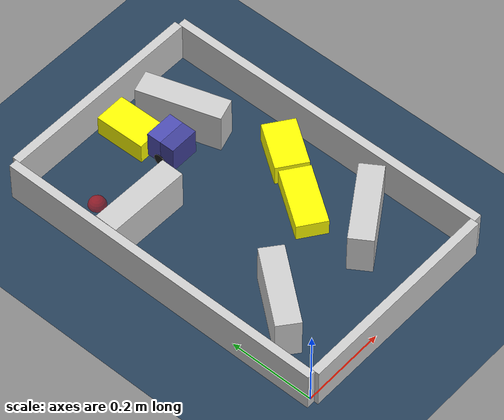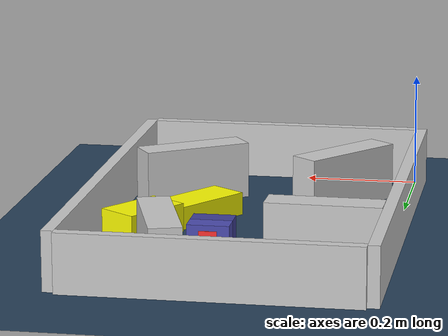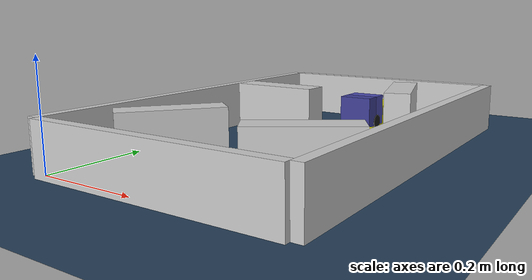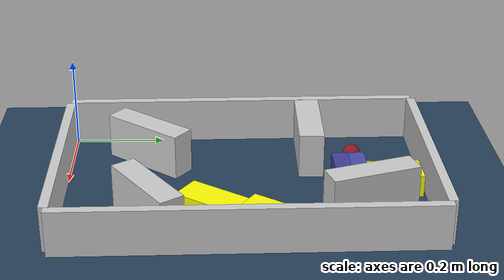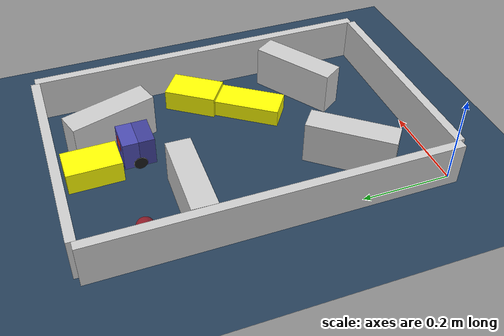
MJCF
<?xml version='1.0' encoding='utf-8'?>
<mujoco model="real_buildable">
  <compiler angle="degree" />
  <option timestep="0.002" integrator="implicitfast" iterations="100" cone="elliptic" />
  <default>
    <geom density="1" />
  </default>
  <asset>
    <texture builtin="gradient" height="3072" rgb1="0.3 0.5 0.7" rgb2="0 0 0" type="skybox" width="512" />
    <texture builtin="checker" height="300" mark="edge" markrgb="0.8 0.8 0.8" name="groundplane" rgb1="0.2 0.3 0.4" rgb2="0.1 0.2 0.3" type="2d" width="300" />
    <material name="groundplane" reflectance="0.2" texrepeat="5 5" texture="groundplane" texuniform="true" />
  </asset>
  <worldbody>
    <light dir="0 0 -1" directional="true" pos="0 0 1.5" />
    <geom name="floor" type="plane" condim="4" friction="0.5 0.005 0.001" material="groundplane" size="0 0 0.05" />
    <body name="walls">
      <geom name="wall_boundary_left" type="box" condim="4" friction="1.0 0.005 0.0001" rgba="0.8 0.8 0.8 1" pos="-0.010000 0.387500 0.050000" euler="0 0 0.000000" size="0.010000 0.397500 0.050000" />
      <geom name="wall_boundary_right" type="box" condim="4" friction="1.0 0.005 0.0001" rgba="0.8 0.8 0.8 1" pos="0.500000 0.387500 0.050000" euler="0 0 0.000000" size="0.010000 0.397500 0.050000" />
      <geom name="wall_boundary_bottom" type="box" condim="4" friction="1.0 0.005 0.0001" rgba="0.8 0.8 0.8 1" pos="0.245000 -0.010000 0.050000" euler="0 0 0.000000" size="0.245000 0.010000 0.050000" />
      <geom name="wall_boundary_top" type="box" condim="4" friction="1.0 0.005 0.0001" rgba="0.8 0.8 0.8 1" pos="0.245000 0.785000 0.050000" euler="0 0 0.000000" size="0.245000 0.010000 0.050000" />
      <geom name="wall_inner_1" type="box" condim="4" friction="1.0 0.005 0.0001" rgba="0.8 0.8 0.8 1" pos="0.112821 0.177057 0.050000" euler="0 0 51.144799" size="0.097500 0.027500 0.050000" />
      <geom name="wall_inner_2" type="box" condim="4" friction="1.0 0.005 0.0001" rgba="0.8 0.8 0.8 1" pos="0.385439 0.183719 0.050000" euler="0 0 33.390875" size="0.097500 0.027500 0.050000" />
      <geom name="wall_inner_3" type="box" condim="4" friction="1.0 0.005 0.0001" rgba="0.8 0.8 0.8 1" pos="0.098000 0.537000 0.050000" euler="0 0 179.100000" size="0.097500 0.027500 0.050000" />
      <geom name="wall_inner_4" type="box" condim="4" friction="1.0 0.005 0.0001" rgba="0.8 0.8 0.8 1" pos="0.351000 0.647000 0.050000" euler="0 0 107.500000" size="0.097500 0.027500 0.050000" />
    </body>
    <body name="car" pos="0.27304311190814817 0.60908164394990671 0.01" quat="0.70391391445838447 0 0 0.71028529551995812">
      <freejoint name="car_freejoint" />
      <inertial pos="0 0 0.0375" mass="0.35" diaginertia="0.000266 0.000266 0.000286" />
      <geom name="front_chassis_collision" type="box" pos="0.0175 0 0.0375" size="0.0175 0.035 0.0325" rgba="0.3 0.3 0.7 1" />
      <geom name="rear_chassis_collision" type="box" pos="-0.0175 0 0.0375" size="0.0175 0.035 0.0325" rgba="0.25 0.25 0.6 1" />
      <geom name="front_marker" type="box" pos="0.034 0 0.0505" size="0.002 0.015 0.01" rgba="1 0.2 0.2 1" contype="0" conaffinity="0" />
      <body name="rear_support_body" pos="-0.03 0 0.0025">
        <joint name="rear_caster_joint" type="ball" damping="0.0001" />
        <inertial pos="0 0 0" mass="0.025" diaginertia="0.000001 0.000001 0.000001" />
        <geom name="rear_support" type="sphere" pos="0 0 0" size="0.0025" friction="0 0 0" rgba="0.7 0.1 0.1 1" />
      </body>
      <body name="front_support_body" pos="0.03 0 0.0025">
        <joint name="front_caster_joint" type="ball" damping="0.0001" />
        <inertial pos="0 0 0" mass="0.025" diaginertia="0.000001 0.000001 0.000001" />
        <geom name="front_support" type="sphere" pos="0 0 0" size="0.0025" friction="0 0 0" rgba="0.1 0.7 0.1 1" />
      </body>
      <body name="left_wheel" pos="0 0.0375 0.015">
        <inertial pos="0 0 0" mass="0.05" diaginertia="0.000003 0.000006 0.000003" />
        <joint name="left_wheel_joint" type="hinge" axis="0 1 0" damping="0.01" armature="0.0001" />
        <geom name="left_wheel_collision" type="cylinder" size="0.015 0.0005" euler="90 0 0" rgba="0.1 0.1 0.1 1" />
      </body>
      <body name="right_wheel" pos="0 -0.0375 0.015">
        <inertial pos="0 0 0" mass="0.05" diaginertia="0.000003 0.000006 0.000003" />
        <joint name="right_wheel_joint" type="hinge" axis="0 1 0" damping="0.01" armature="0.0001" />
        <geom name="right_wheel_collision" type="cylinder" size="0.015 0.0005" euler="90 0 0" rgba="0.1 0.1 0.1 1" />
      </body>
    </body>
    <body name="obstacle_0_movable">
      <geom name="obstacle_0_movable" condim="4" pos="0.35076817456810988 0.31866617318598139 0.02" friction="1 0.005 0.0001" rgba="1 1 0 1" size="0.035000 0.075000 0.020000" type="box" mass="0.1" quat="0.30368392077595158 0 0 0.95277283560256143" />
      <joint type="free" />
    </body>
    <body name="obstacle_1_movable">
      <geom name="obstacle_1_movable" condim="4" pos="0.25824672711967872 0.70843367407508739 0.025000000000000001" friction="1 0.005 0.0001" rgba="1 1 0 1" size="0.037500 0.060000 0.025000" type="box" mass="0.1" quat="0.99996863122199675 0 0 0.0079206421460816644" />
      <joint type="free" />
    </body>
    <body name="obstacle_2_movable">
      <geom name="obstacle_2_movable" condim="4" pos="0.42472041125499849 0.43175773354954344 0.025000000000000001" friction="1 0.005 0.0001" rgba="1 1 0 1" size="0.037500 0.060000 0.025000" type="box" mass="0.1" quat="0.30325346410520121 0 0 0.95290993095265586" />
      <joint type="free" />
    </body>
    <site name="goal" type="sphere" pos="0.080000 0.640000 0.0" size="0.02" rgba="1 0 0 0.5" />
  </worldbody>
  <actuator>
    <velocity name="left_wheel_drive" joint="left_wheel_joint" ctrlrange="-25 25" kv="0.75" forcerange="-0.5 0.5" />
    <velocity name="right_wheel_drive" joint="right_wheel_joint" ctrlrange="-25 25" kv="0.75" forcerange="-0.5 0.5" />
  </actuator>
</mujoco>
